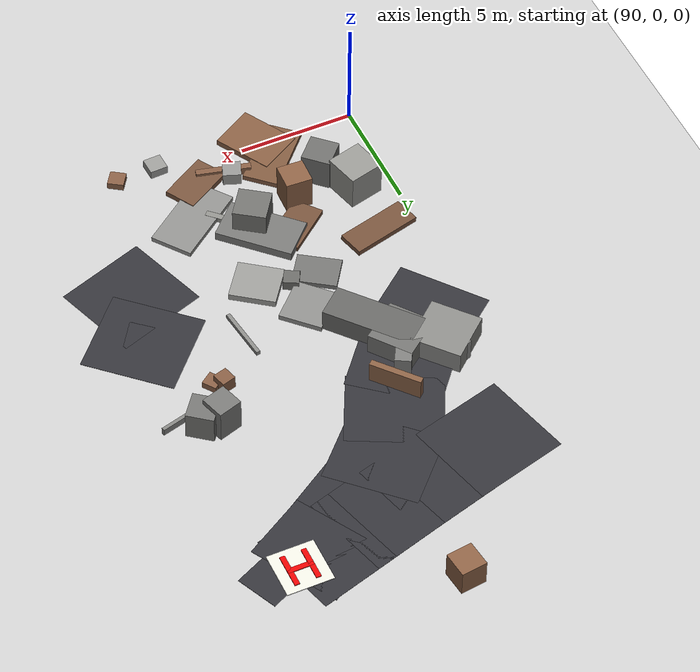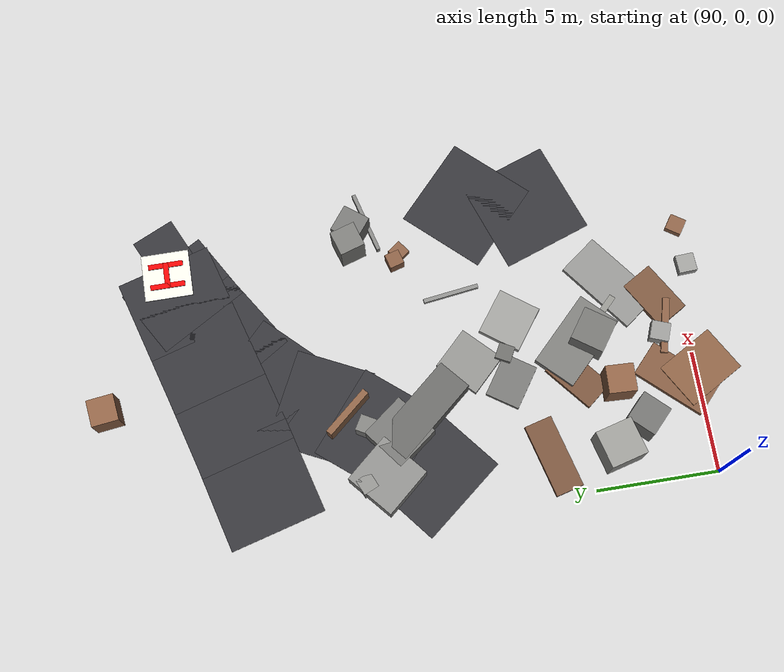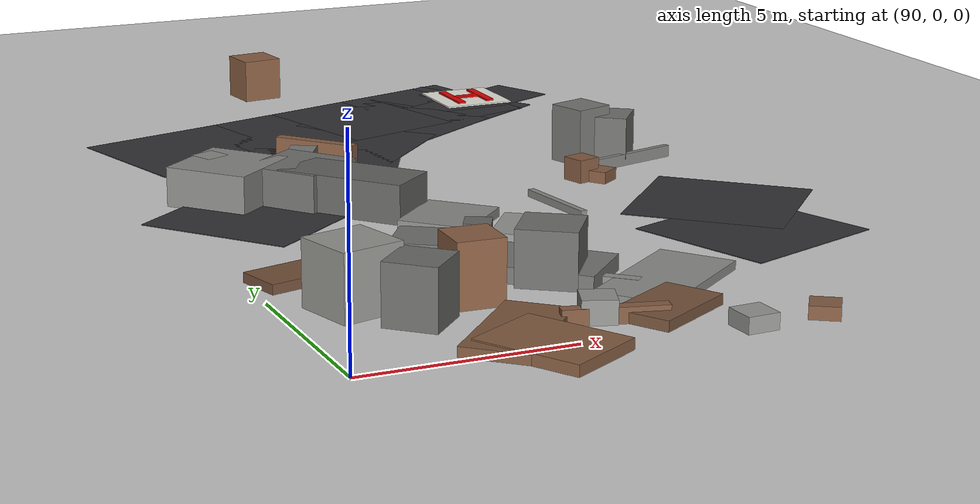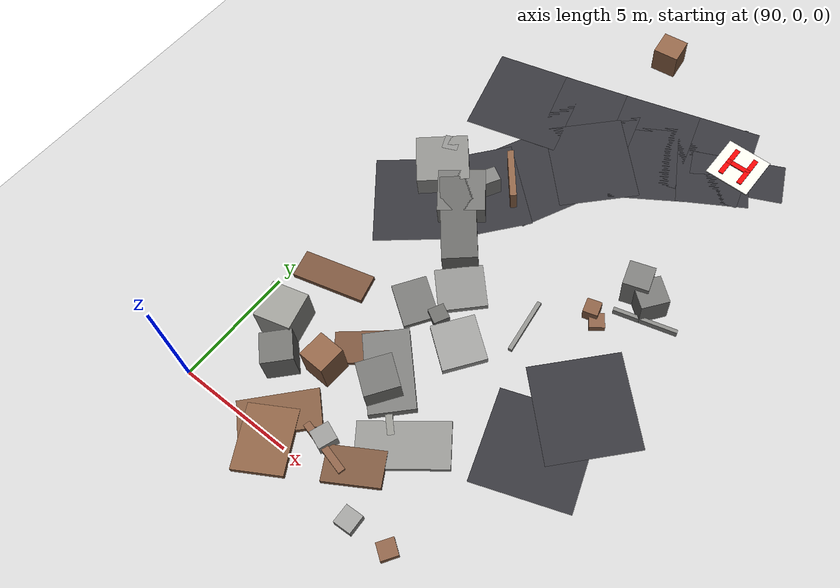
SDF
<sdf version="1.6">
 <world name="navitas_arena">
  <model name="ground_plane">
   <static>true</static>
   <link name="link">
    <collision name="collision">
     <geometry><plane><normal>0 0 1</normal><size>400 400</size></plane></geometry>
     <surface><friction><ode><mu>0.8</mu><mu2>0.8</mu2></ode></friction></surface>
    </collision>
    <visual name="visual">
     <cast_shadows>false</cast_shadows>
     <geometry><plane><normal>0 0 1</normal><size>400 400</size></plane></geometry>
     <material>
      <script><uri>file://media/materials/scripts/gazebo.material</uri><name>Gazebo/Grey</name></script>
     </material>
    </visual>
   </link>
  </model>
  <model name="road_zor_1_22">
   <static>true</static>
   <pose>92.479 18.320 0.040 0 0 0.261</pose>
   <link name="link">
    <collision name="col"><geometry><box><size>4.111 4.000 0.020</size></box></geometry></collision>
    <visual name="vis">
     <geometry><box><size>4.111 4.000 0.020</size></box></geometry>
     <material><ambient>0.20 0.20 0.22 1</ambient><diffuse>0.20 0.20 0.22 1</diffuse></material>
    </visual>
   </link>
  </model>
  <model name="road_zor_1_23">
   <static>true</static>
   <pose>95.432 19.133 0.040 0 0 0.277</pose>
   <link name="link">
    <collision name="col"><geometry><box><size>3.815 4.000 0.020</size></box></geometry></collision>
    <visual name="vis">
     <geometry><box><size>3.815 4.000 0.020</size></box></geometry>
     <material><ambient>0.20 0.20 0.22 1</ambient><diffuse>0.20 0.20 0.22 1</diffuse></material>
    </visual>
   </link>
  </model>
  <model name="road_zor_1_24">
   <static>true</static>
   <pose>98.032 19.885 0.040 0 0 0.287</pose>
   <link name="link">
    <collision name="col"><geometry><box><size>3.398 4.000 0.020</size></box></geometry></collision>
    <visual name="vis">
     <geometry><box><size>3.398 4.000 0.020</size></box></geometry>
     <material><ambient>0.20 0.20 0.22 1</ambient><diffuse>0.20 0.20 0.22 1</diffuse></material>
    </visual>
   </link>
  </model>
  <model name="road_zor_1_25">
   <static>true</static>
   <pose>100.523 20.619 0.040 0 0 0.286</pose>
   <link name="link">
    <collision name="col"><geometry><box><size>3.595 4.000 0.020</size></box></geometry></collision>
    <visual name="vis">
     <geometry><box><size>3.595 4.000 0.020</size></box></geometry>
     <material><ambient>0.20 0.20 0.22 1</ambient><diffuse>0.20 0.20 0.22 1</diffuse></material>
    </visual>
   </link>
  </model>
  <model name="road_zor_2_12">
   <static>true</static>
   <pose>91.876 11.401 0.040 0 0 0.677</pose>
   <link name="link">
    <collision name="col"><geometry><box><size>3.592 4.000 0.020</size></box></geometry></collision>
    <visual name="vis">
     <geometry><box><size>3.592 4.000 0.020</size></box></geometry>
     <material><ambient>0.20 0.20 0.22 1</ambient><diffuse>0.20 0.20 0.22 1</diffuse></material>
    </visual>
   </link>
  </model>
  <model name="road_zor_2_13">
   <static>true</static>
   <pose>93.787 13.284 0.040 0 0 0.879</pose>
   <link name="link">
    <collision name="col"><geometry><box><size>3.601 4.000 0.020</size></box></geometry></collision>
    <visual name="vis">
     <geometry><box><size>3.601 4.000 0.020</size></box></geometry>
     <material><ambient>0.20 0.20 0.22 1</ambient><diffuse>0.20 0.20 0.22 1</diffuse></material>
    </visual>
   </link>
  </model>
  <model name="road_zor_2_14">
   <static>true</static>
   <pose>95.186 15.414 0.040 0 0 1.112</pose>
   <link name="link">
    <collision name="col"><geometry><box><size>3.331 4.000 0.020</size></box></geometry></collision>
    <visual name="vis">
     <geometry><box><size>3.331 4.000 0.020</size></box></geometry>
     <material><ambient>0.20 0.20 0.22 1</ambient><diffuse>0.20 0.20 0.22 1</diffuse></material>
    </visual>
   </link>
  </model>
  <model name="road_zor_2_15">
   <static>true</static>
   <pose>96.606 17.412 0.040 0 0 0.801</pose>
   <link name="link">
    <collision name="col"><geometry><box><size>3.430 4.000 0.020</size></box></geometry></collision>
    <visual name="vis">
     <geometry><box><size>3.430 4.000 0.020</size></box></geometry>
     <material><ambient>0.20 0.20 0.22 1</ambient><diffuse>0.20 0.20 0.22 1</diffuse></material>
    </visual>
   </link>
  </model>
  <model name="road_zor_2_16">
   <static>true</static>
   <pose>98.719 19.110 0.040 0 0 0.570</pose>
   <link name="link">
    <collision name="col"><geometry><box><size>3.828 4.000 0.020</size></box></geometry></collision>
    <visual name="vis">
     <geometry><box><size>3.828 4.000 0.020</size></box></geometry>
     <material><ambient>0.20 0.20 0.22 1</ambient><diffuse>0.20 0.20 0.22 1</diffuse></material>
    </visual>
   </link>
  </model>
  <model name="road_zor_2_17">
   <static>true</static>
   <pose>100.883 20.450 0.040 0 0 0.533</pose>
   <link name="link">
    <collision name="col"><geometry><box><size>3.065 4.000 0.020</size></box></geometry></collision>
    <visual name="vis">
     <geometry><box><size>3.065 4.000 0.020</size></box></geometry>
     <material><ambient>0.20 0.20 0.22 1</ambient><diffuse>0.20 0.20 0.22 1</diffuse></material>
    </visual>
   </link>
  </model>
  <model name="road_zor_3_15">
   <static>true</static>
   <pose>102.417 5.636 0.040 0 0 1.908</pose>
   <link name="link">
    <collision name="col"><geometry><box><size>3.837 4.000 0.020</size></box></geometry></collision>
    <visual name="vis">
     <geometry><box><size>3.837 4.000 0.020</size></box></geometry>
     <material><ambient>0.20 0.20 0.22 1</ambient><diffuse>0.20 0.20 0.22 1</diffuse></material>
    </visual>
   </link>
  </model>
  <model name="road_zor_3_16">
   <static>true</static>
   <pose>102.911 8.077 0.040 0 0 0.822</pose>
   <link name="link">
    <collision name="col"><geometry><box><size>3.779 4.000 0.020</size></box></geometry></collision>
    <visual name="vis">
     <geometry><box><size>3.779 4.000 0.020</size></box></geometry>
     <material><ambient>0.20 0.20 0.22 1</ambient><diffuse>0.20 0.20 0.22 1</diffuse></material>
    </visual>
   </link>
  </model>
  <model name="road_zor_3_22">
   <static>true</static>
   <pose>102.017 20.565 0.040 0 0 2.005</pose>
   <link name="link">
    <collision name="col"><geometry><box><size>1.859 4.000 0.020</size></box></geometry></collision>
    <visual name="vis">
     <geometry><box><size>1.859 4.000 0.020</size></box></geometry>
     <material><ambient>0.20 0.20 0.22 1</ambient><diffuse>0.20 0.20 0.22 1</diffuse></material>
    </visual>
   </link>
  </model>
  <model name="blk_zor_2_2_0">
   <static>true</static>
   <pose>94.000 13.707 0.500 0 0 1.052</pose>
   <link name="link">
    <collision name="col"><geometry><box><size>0.684 0.684 1.000</size></box></geometry></collision>
    <visual name="vis">
     <geometry><box><size>0.684 0.684 1.000</size></box></geometry>
     <material><ambient>0.49 0.49 0.48 1</ambient><diffuse>0.49 0.49 0.48 1</diffuse></material>
    </visual>
   </link>
  </model>
  <model name="blk_zor_2_2_1">
   <static>true</static>
   <pose>91.863 13.187 0.500 0 0 0.712</pose>
   <link name="link">
    <collision name="col"><geometry><box><size>2.204 2.204 1.000</size></box></geometry></collision>
    <visual name="vis">
     <geometry><box><size>2.204 2.204 1.000</size></box></geometry>
     <material><ambient>0.54 0.54 0.53 1</ambient><diffuse>0.54 0.54 0.53 1</diffuse></material>
    </visual>
   </link>
  </model>
  <model name="blk_zor_2_2_2">
   <static>true</static>
   <pose>94.637 14.375 0.500 0 0 2.280</pose>
   <link name="link">
    <collision name="col"><geometry><box><size>2.246 0.271 1.000</size></box></geometry></collision>
    <visual name="vis">
     <geometry><box><size>2.246 0.271 1.000</size></box></geometry>
     <material><ambient>0.54 0.38 0.27 1</ambient><diffuse>0.54 0.38 0.27 1</diffuse></material>
    </visual>
   </link>
  </model>
  <model name="blk_zor_2_2_3">
   <static>true</static>
   <pose>94.203 11.357 0.500 0 0 2.277</pose>
   <link name="link">
    <collision name="col"><geometry><box><size>3.901 1.471 1.000</size></box></geometry></collision>
    <visual name="vis">
     <geometry><box><size>3.901 1.471 1.000</size></box></geometry>
     <material><ambient>0.40 0.40 0.39 1</ambient><diffuse>0.40 0.40 0.39 1</diffuse></material>
    </visual>
   </link>
  </model>
  <model name="blk_zor_2_2_4">
   <static>true</static>
   <pose>93.505 12.427 0.500 0 0 2.227</pose>
   <link name="link">
    <collision name="col"><geometry><box><size>1.983 1.983 1.000</size></box></geometry></collision>
    <visual name="vis">
     <geometry><box><size>1.983 1.983 1.000</size></box></geometry>
     <material><ambient>0.45 0.45 0.44 1</ambient><diffuse>0.45 0.45 0.44 1</diffuse></material>
    </visual>
   </link>
  </model>
  <model name="blk_zor_2_2_5">
   <static>true</static>
   <pose>91.668 14.018 0.500 0 0 0.408</pose>
   <link name="link">
    <collision name="col"><geometry><box><size>0.662 0.662 1.000</size></box></geometry></collision>
    <visual name="vis">
     <geometry><box><size>0.662 0.662 1.000</size></box></geometry>
     <material><ambient>0.55 0.55 0.54 1</ambient><diffuse>0.55 0.55 0.54 1</diffuse></material>
    </visual>
   </link>
  </model>
  <model name="deb_zor_0">
   <static>true</static>
   <pose>94.718 4.882 0.104 0 0 0.683</pose>
   <link name="link">
    <collision name="col"><geometry><box><size>2.345 1.335 0.208</size></box></geometry></collision>
    <visual name="vis">
     <geometry><box><size>2.345 1.335 0.208</size></box></geometry>
     <material><ambient>0.46 0.32 0.23 1</ambient><diffuse>0.46 0.32 0.23 1</diffuse></material>
    </visual>
   </link>
  </model>
  <model name="deb_zor_3">
   <static>true</static>
   <pose>101.233 11.252 0.151 0 0 2.202</pose>
   <link name="link">
    <collision name="col"><geometry><box><size>0.631 0.631 0.302</size></box></geometry></collision>
    <visual name="vis">
     <geometry><box><size>0.631 0.631 0.302</size></box></geometry>
     <material><ambient>0.53 0.37 0.27 1</ambient><diffuse>0.53 0.37 0.27 1</diffuse></material>
    </visual>
   </link>
  </model>
  <model name="deb_zor_5">
   <static>true</static>
   <pose>101.706 13.299 0.756 0 0 0.305</pose>
   <link name="link">
    <collision name="col"><geometry><box><size>1.068 1.068 1.513</size></box></geometry></collision>
    <visual name="vis">
     <geometry><box><size>1.068 1.068 1.513</size></box></geometry>
     <material><ambient>0.47 0.47 0.46 1</ambient><diffuse>0.47 0.47 0.46 1</diffuse></material>
    </visual>
   </link>
  </model>
  <model name="deb_zor_20">
   <static>true</static>
   <pose>94.292 -0.158 0.133 0 0 2.090</pose>
   <link name="link">
    <collision name="col"><geometry><box><size>2.608 2.024 0.266</size></box></geometry></collision>
    <visual name="vis">
     <geometry><box><size>2.608 2.024 0.266</size></box></geometry>
     <material><ambient>0.53 0.37 0.26 1</ambient><diffuse>0.53 0.37 0.26 1</diffuse></material>
    </visual>
   </link>
  </model>
  <model name="deb_zor_34">
   <static>true</static>
   <pose>96.190 4.646 0.195 0 0 2.360</pose>
   <link name="link">
    <collision name="col"><geometry><box><size>3.361 1.851 0.391</size></box></geometry></collision>
    <visual name="vis">
     <geometry><box><size>3.361 1.851 0.391</size></box></geometry>
     <material><ambient>0.47 0.47 0.46 1</ambient><diffuse>0.47 0.47 0.46 1</diffuse></material>
    </visual>
   </link>
  </model>
  <model name="deb_zor_45">
   <static>true</static>
   <pose>93.999 0.875 0.117 0 0 0.824</pose>
   <link name="link">
    <collision name="col"><geometry><box><size>3.152 1.547 0.234</size></box></geometry></collision>
    <visual name="vis">
     <geometry><box><size>3.152 1.547 0.234</size></box></geometry>
     <material><ambient>0.50 0.35 0.25 1</ambient><diffuse>0.50 0.35 0.25 1</diffuse></material>
    </visual>
   </link>
  </model>
  <model name="deb_zor_51">
   <static>true</static>
   <pose>100.828 11.494 0.300 0 0 1.852</pose>
   <link name="link">
    <collision name="col"><geometry><box><size>0.621 0.621 0.600</size></box></geometry></collision>
    <visual name="vis">
     <geometry><box><size>0.621 0.621 0.600</size></box></geometry>
     <material><ambient>0.52 0.36 0.26 1</ambient><diffuse>0.52 0.36 0.26 1</diffuse></material>
    </visual>
   </link>
  </model>
  <model name="deb_zor_52">
   <static>true</static>
   <pose>99.094 9.398 0.093 0 0 1.702</pose>
   <link name="link">
    <collision name="col"><geometry><box><size>2.351 0.170 0.186</size></box></geometry></collision>
    <visual name="vis">
     <geometry><box><size>2.351 0.170 0.186</size></box></geometry>
     <material><ambient>0.54 0.54 0.53 1</ambient><diffuse>0.54 0.54 0.53 1</diffuse></material>
    </visual>
   </link>
  </model>
  <model name="deb_zor_53">
   <static>true</static>
   <pose>96.302 4.038 0.673 0 0 0.958</pose>
   <link name="link">
    <collision name="col"><geometry><box><size>1.420 1.420 1.346</size></box></geometry></collision>
    <visual name="vis">
     <geometry><box><size>1.420 1.420 1.346</size></box></geometry>
     <material><ambient>0.44 0.44 0.43 1</ambient><diffuse>0.44 0.44 0.43 1</diffuse></material>
    </visual>
   </link>
  </model>
  <model name="deb_zor_54">
   <static>true</static>
   <pose>91.665 6.461 0.120 0 0 0.253</pose>
   <link name="link">
    <collision name="col"><geometry><box><size>3.061 1.166 0.239</size></box></geometry></collision>
    <visual name="vis">
     <geometry><box><size>3.061 1.166 0.239</size></box></geometry>
     <material><ambient>0.46 0.32 0.23 1</ambient><diffuse>0.46 0.32 0.23 1</diffuse></material>
    </visual>
   </link>
  </model>
  <model name="deb_zor_64">
   <static>true</static>
   <pose>92.548 2.557 0.721 0 0 0.807</pose>
   <link name="link">
    <collision name="col"><geometry><box><size>1.267 1.267 1.441</size></box></geometry></collision>
    <visual name="vis">
     <geometry><box><size>1.267 1.267 1.441</size></box></geometry>
     <material><ambient>0.43 0.43 0.42 1</ambient><diffuse>0.43 0.43 0.42 1</diffuse></material>
    </visual>
   </link>
  </model>
  <model name="deb_zor_66">
   <static>true</static>
   <pose>91.560 3.900 0.787 0 0 1.826</pose>
   <link name="link">
    <collision name="col"><geometry><box><size>1.550 1.550 1.574</size></box></geometry></collision>
    <visual name="vis">
     <geometry><box><size>1.550 1.550 1.574</size></box></geometry>
     <material><ambient>0.59 0.59 0.57 1</ambient><diffuse>0.59 0.59 0.57 1</diffuse></material>
    </visual>
   </link>
  </model>
  <model name="deb_zor_69">
   <static>true</static>
   <pose>102.738 12.414 0.155 0 0 0.259</pose>
   <link name="link">
    <collision name="col"><geometry><box><size>2.656 0.154 0.309</size></box></geometry></collision>
    <visual name="vis">
     <geometry><box><size>2.656 0.154 0.309</size></box></geometry>
     <material><ambient>0.51 0.51 0.50 1</ambient><diffuse>0.51 0.51 0.50 1</diffuse></material>
    </visual>
   </link>
  </model>
  <model name="deb_zor_88">
   <static>true</static>
   <pose>97.309 3.319 0.108 0 0 2.377</pose>
   <link name="link">
    <collision name="col"><geometry><box><size>1.545 0.271 0.216</size></box></geometry></collision>
    <visual name="vis">
     <geometry><box><size>1.545 0.271 0.216</size></box></geometry>
     <material><ambient>0.56 0.56 0.54 1</ambient><diffuse>0.56 0.56 0.54 1</diffuse></material>
    </visual>
   </link>
  </model>
  <model name="deb_zor_108">
   <static>true</static>
   <pose>98.752 -0.520 0.192 0 0 0.049</pose>
   <link name="link">
    <collision name="col"><geometry><box><size>0.767 0.767 0.384</size></box></geometry></collision>
    <visual name="vis">
     <geometry><box><size>0.767 0.767 0.384</size></box></geometry>
     <material><ambient>0.60 0.60 0.59 1</ambient><diffuse>0.60 0.60 0.59 1</diffuse></material>
    </visual>
   </link>
  </model>
  <model name="deb_zor_117">
   <static>true</static>
   <pose>100.518 -0.468 0.155 0 0 2.549</pose>
   <link name="link">
    <collision name="col"><geometry><box><size>0.691 0.691 0.311</size></box></geometry></collision>
    <visual name="vis">
     <geometry><box><size>0.691 0.691 0.311</size></box></geometry>
     <material><ambient>0.53 0.37 0.27 1</ambient><diffuse>0.53 0.37 0.27 1</diffuse></material>
    </visual>
   </link>
  </model>
  <model name="deb_zor_124">
   <static>true</static>
   <pose>94.995 7.585 0.112 0 0 2.546</pose>
   <link name="link">
    <collision name="col"><geometry><box><size>1.883 1.449 0.224</size></box></geometry></collision>
    <visual name="vis">
     <geometry><box><size>1.883 1.449 0.224</size></box></geometry>
     <material><ambient>0.45 0.45 0.44 1</ambient><diffuse>0.45 0.45 0.44 1</diffuse></material>
    </visual>
   </link>
  </model>
  <model name="deb_zor_127">
   <static>true</static>
   <pose>98.474 2.774 0.106 0 0 0.646</pose>
   <link name="link">
    <collision name="col"><geometry><box><size>3.586 1.849 0.212</size></box></geometry></collision>
    <visual name="vis">
     <geometry><box><size>3.586 1.849 0.212</size></box></geometry>
     <material><ambient>0.56 0.56 0.55 1</ambient><diffuse>0.56 0.56 0.55 1</diffuse></material>
    </visual>
   </link>
  </model>
  <model name="deb_zor_141">
   <static>true</static>
   <pose>96.246 23.996 0.594 0 0 1.692</pose>
   <link name="link">
    <collision name="col"><geometry><box><size>1.112 1.112 1.188</size></box></geometry></collision>
    <visual name="vis">
     <geometry><box><size>1.112 1.112 1.188</size></box></geometry>
     <material><ambient>0.55 0.38 0.27 1</ambient><diffuse>0.55 0.38 0.27 1</diffuse></material>
    </visual>
   </link>
  </model>
  <model name="deb_zor_142">
   <static>true</static>
   <pose>96.073 9.144 0.119 0 0 0.780</pose>
   <link name="link">
    <collision name="col"><geometry><box><size>1.979 1.854 0.239</size></box></geometry></collision>
    <visual name="vis">
     <geometry><box><size>1.979 1.854 0.239</size></box></geometry>
     <material><ambient>0.55 0.55 0.54 1</ambient><diffuse>0.55 0.55 0.54 1</diffuse></material>
    </visual>
   </link>
  </model>
  <model name="deb_zor_143">
   <static>true</static>
   <pose>94.104 3.389 0.767 0 0 1.528</pose>
   <link name="link">
    <collision name="col"><geometry><box><size>1.141 1.141 1.534</size></box></geometry></collision>
    <visual name="vis">
     <geometry><box><size>1.141 1.141 1.534</size></box></geometry>
     <material><ambient>0.55 0.38 0.27 1</ambient><diffuse>0.55 0.38 0.27 1</diffuse></material>
    </visual>
   </link>
  </model>
  <model name="deb_zor_150">
   <static>true</static>
   <pose>96.006 1.206 0.279 0 0 2.785</pose>
   <link name="link">
    <collision name="col"><geometry><box><size>0.782 0.782 0.557</size></box></geometry></collision>
    <visual name="vis">
     <geometry><box><size>0.782 0.782 0.557</size></box></geometry>
     <material><ambient>0.58 0.58 0.57 1</ambient><diffuse>0.58 0.58 0.57 1</diffuse></material>
    </visual>
   </link>
  </model>
  <model name="deb_zor_161">
   <static>true</static>
   <pose>96.263 0.915 0.185 0 0 2.898</pose>
   <link name="link">
    <collision name="col"><geometry><box><size>2.347 0.286 0.369</size></box></geometry></collision>
    <visual name="vis">
     <geometry><box><size>2.347 0.286 0.369</size></box></geometry>
     <material><ambient>0.53 0.37 0.27 1</ambient><diffuse>0.53 0.37 0.27 1</diffuse></material>
    </visual>
   </link>
  </model>
  <model name="deb_zor_170">
   <static>true</static>
   <pose>102.421 13.096 0.632 0 0 0.910</pose>
   <link name="link">
    <collision name="col"><geometry><box><size>1.174 1.174 1.264</size></box></geometry></collision>
    <visual name="vis">
     <geometry><box><size>1.174 1.174 1.264</size></box></geometry>
     <material><ambient>0.45 0.45 0.44 1</ambient><diffuse>0.45 0.45 0.44 1</diffuse></material>
    </visual>
   </link>
  </model>
  <model name="deb_zor_173">
   <static>true</static>
   <pose>97.586 1.064 0.126 0 0 0.532</pose>
   <link name="link">
    <collision name="col"><geometry><box><size>2.264 1.407 0.251</size></box></geometry></collision>
    <visual name="vis">
     <geometry><box><size>2.264 1.407 0.251</size></box></geometry>
     <material><ambient>0.47 0.33 0.24 1</ambient><diffuse>0.47 0.33 0.24 1</diffuse></material>
    </visual>
   </link>
  </model>
  <model name="deb_zor_185">
   <static>true</static>
   <pose>97.526 7.213 0.148 0 0 0.936</pose>
   <link name="link">
    <collision name="col"><geometry><box><size>1.814 1.981 0.295</size></box></geometry></collision>
    <visual name="vis">
     <geometry><box><size>1.814 1.981 0.295</size></box></geometry>
     <material><ambient>0.60 0.60 0.59 1</ambient><diffuse>0.60 0.60 0.59 1</diffuse></material>
    </visual>
   </link>
  </model>
  <model name="deb_zor_206">
   <static>true</static>
   <pose>96.168 7.654 0.223 0 0 1.085</pose>
   <link name="link">
    <collision name="col"><geometry><box><size>0.668 0.668 0.447</size></box></geometry></collision>
    <visual name="vis">
     <geometry><box><size>0.668 0.668 0.447</size></box></geometry>
     <material><ambient>0.41 0.41 0.40 1</ambient><diffuse>0.41 0.41 0.40 1</diffuse></material>
    </visual>
   </link>
  </model>
  <model name="hbpad_zor">
   <static>true</static>
   <pose>101.815 21.000 0.070 0 0 0.000</pose>
   <link name="link">
    <collision name="col"><geometry><box><size>2.000 2.000 0.040</size></box></geometry></collision>
    <visual name="vis">
     <geometry><box><size>2.000 2.000 0.040</size></box></geometry>
     <material><ambient>0.92 0.92 0.88 1</ambient><diffuse>0.92 0.92 0.88 1</diffuse></material>
    </visual>
   </link>
  </model>
  <model name="H_zor_l">
   <static>true</static>
   <pose>101.365 21.000 0.100 0 0 0.000</pose>
   <link name="link">
    <collision name="col"><geometry><box><size>0.220 1.450 0.080</size></box></geometry></collision>
    <visual name="vis">
     <geometry><box><size>0.220 1.450 0.080</size></box></geometry>
     <material><ambient>0.90 0.02 0.02 1</ambient><diffuse>0.90 0.02 0.02 1</diffuse></material>
    </visual>
   </link>
  </model>
  <model name="H_zor_r">
   <static>true</static>
   <pose>102.265 21.000 0.100 0 0 0.000</pose>
   <link name="link">
    <collision name="col"><geometry><box><size>0.220 1.450 0.080</size></box></geometry></collision>
    <visual name="vis">
     <geometry><box><size>0.220 1.450 0.080</size></box></geometry>
     <material><ambient>0.90 0.02 0.02 1</ambient><diffuse>0.90 0.02 0.02 1</diffuse></material>
    </visual>
   </link>
  </model>
  <model name="H_zor_b">
   <static>true</static>
   <pose>101.815 21.000 0.100 0 0 0.000</pose>
   <link name="link">
    <collision name="col"><geometry><box><size>1.100 0.220 0.080</size></box></geometry></collision>
    <visual name="vis">
     <geometry><box><size>1.100 0.220 0.080</size></box></geometry>
     <material><ambient>0.90 0.02 0.02 1</ambient><diffuse>0.90 0.02 0.02 1</diffuse></material>
    </visual>
   </link>
  </model>
 </world>
</sdf>
